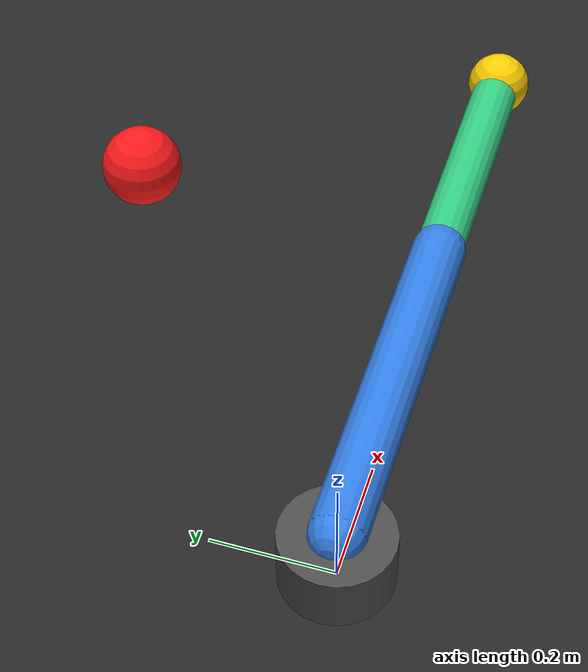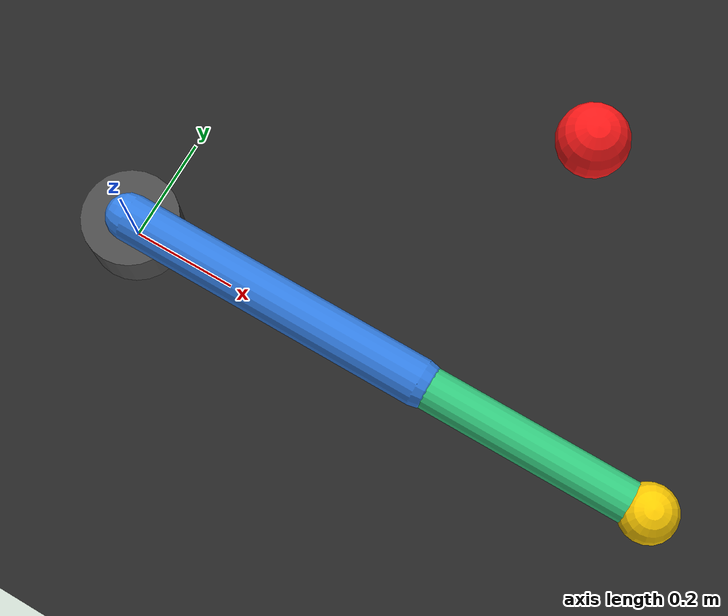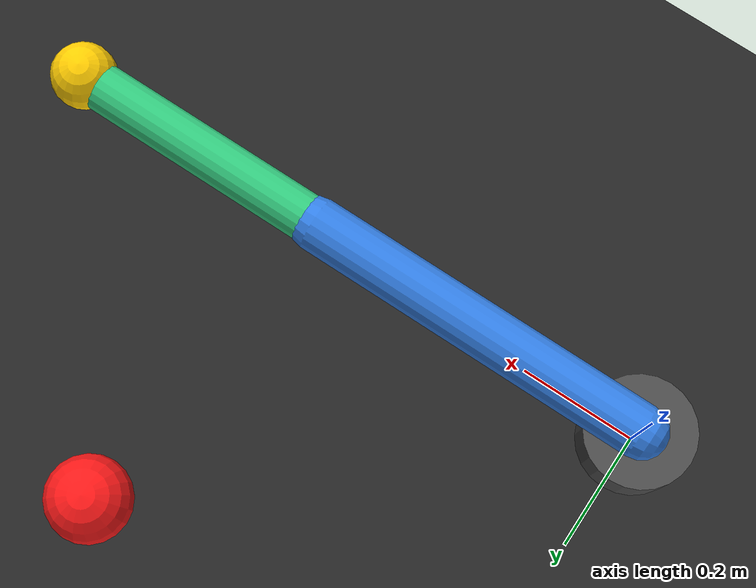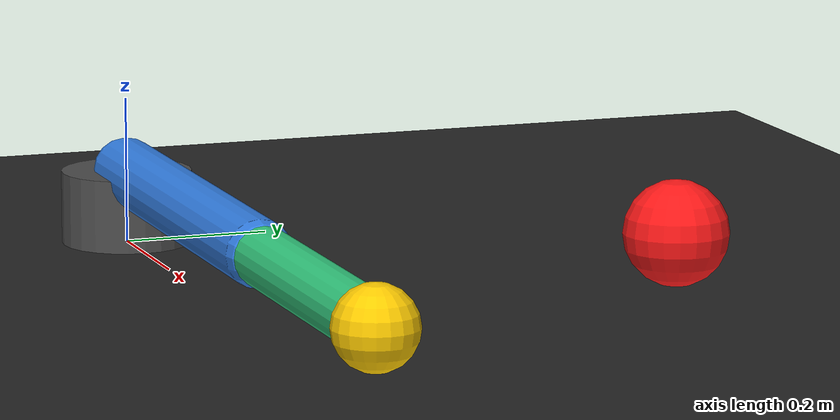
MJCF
<mujoco model="vision_target_tracking">
  <option timestep="0.002" gravity="0 0 0"/>

  <visual>
    <global offwidth="640" offheight="640"/>
  </visual>

  <worldbody>
    <light name="main_light" pos="0 0.4 3" diffuse="1 1 1" ambient="0.25 0.25 0.25"/>
    <geom name="floor" type="plane" size="2 2 0.1" rgba="0.15 0.15 0.15 1"/>

    <body name="base" pos="0 0 0.05">
      <geom type="cylinder" size="0.09 0.05" rgba="0.3 0.3 0.3 1" contype="0" conaffinity="0"/>
      <body name="link1" pos="0 0 0.05">
        <joint name="shoulder" type="hinge" axis="0 0 1" range="-180 180" damping="1"/>
        <geom type="capsule" fromto="0 0 0 0.6 0 0" size="0.045" rgba="0.2 0.5 0.9 1" contype="0" conaffinity="0"/>
        <body name="link2" pos="0.6 0 0">
          <joint name="elbow" type="hinge" axis="0 0 1" range="-180 180" damping="1"/>
          <geom type="capsule" fromto="0 0 0 0.45 0 0" size="0.04" rgba="0.2 0.8 0.5 1" contype="0" conaffinity="0"/>
          <site name="end_effector" pos="0.45 0 0" size="0.055" rgba="1 0.8 0 1"/>
        </body>
      </body>
    </body>

    <site name="target" pos="0.65 0.55 0.10" size="0.07" rgba="1 0.1 0.1 1"/>

    <geom name="distractor_box" type="box" pos="0 0 -1" size="0.06 0.04 0.03" rgba="0.8 0.2 0.1 0" contype="0" conaffinity="0"/>
    <geom name="distractor_capsule" type="capsule" pos="0 0 -1" size="0.04 0.06" rgba="0.8 0.2 0.1 0" contype="0" conaffinity="0"/>
    <geom name="distractor_ellipsoid" type="ellipsoid" pos="0 0 -1" size="0.07 0.04 0.03" rgba="0.8 0.2 0.1 0" contype="0" conaffinity="0"/>
    <geom name="ood_cylinder" type="cylinder" pos="0 0 -1" size="0.05 0.03" rgba="0.6 0.2 0.2 0" contype="0" conaffinity="0"/>
    <geom name="occluder" type="box" pos="0 0 -1" size="0.03 0.02 0.02" rgba="0.1 0.6 0.8 0" contype="0" conaffinity="0"/>

    <camera name="vision" pos="0 0.45 2.5" xyaxes="1 0 0 0 1 0" projection="orthographic" fovy="2.30"/>
  </worldbody>

  <actuator>
    <position name="shoulder_position" joint="shoulder" kp="80" kv="8" ctrlrange="-3.1416 3.1416"/>
    <position name="elbow_position" joint="elbow" kp="60" kv="6" ctrlrange="-3.1416 3.1416"/>
  </actuator>
</mujoco>
